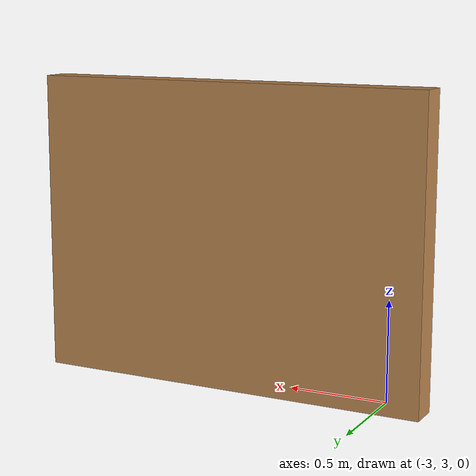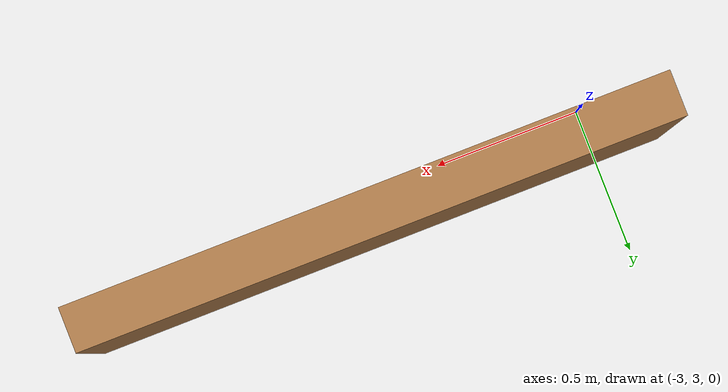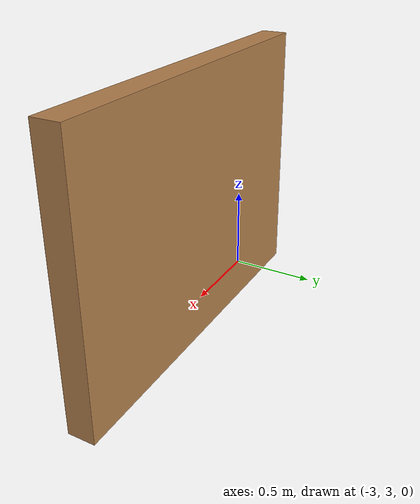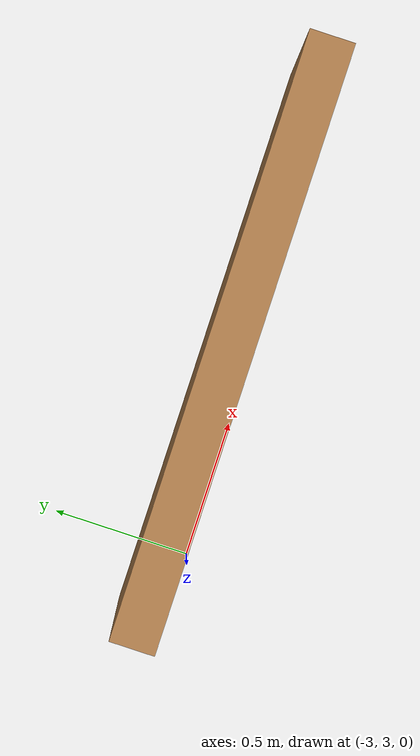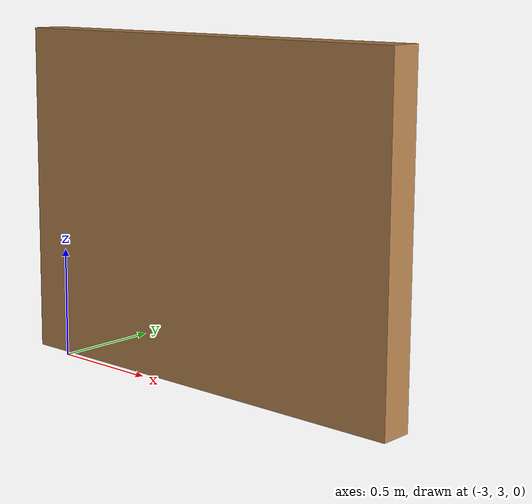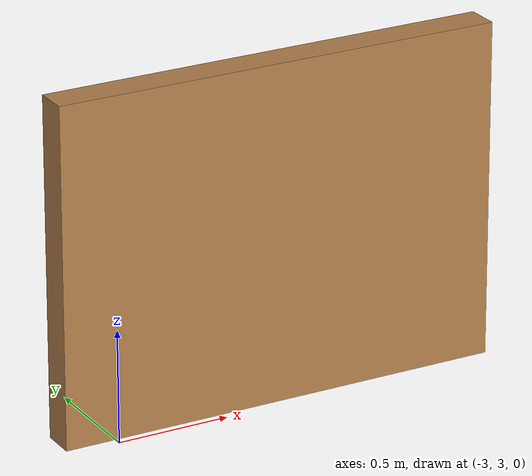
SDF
<?xml version='1.0'?>
<sdf version='1.6'>
  <model name='wall_v'>
    <pose frame=''>-2.223 3.109 0 0 -0 0</pose>
    <link name='Wall_43'>
      <collision name='Wall_43_Collision'>
        <geometry>
          <box>
            <size>2 0.15 1.5</size>
          </box>
        </geometry>
        <pose frame=''>0 0 0.75 0 -0 0</pose>
      </collision>
      <visual name='Wall_43_Visual'>
        <pose frame=''>0 0 0.75 0 -0 0</pose>
        <geometry>
          <box>
            <size>2 0.15 1.5</size>
          </box>
        </geometry>
        <material>
          <script>
            <uri>file://media/materials/scripts/gazebo.material</uri>
            <name>Gazebo/Wood</name>
          </script>
          <ambient>1 1 1 1</ambient>
        </material>
        <meta>
          <layer>0</layer>
        </meta>
      </visual>
      <pose frame=''>0 0 0 0 -0 0</pose>
    </link>
    <static>1</static>
  </model>
</sdf>
